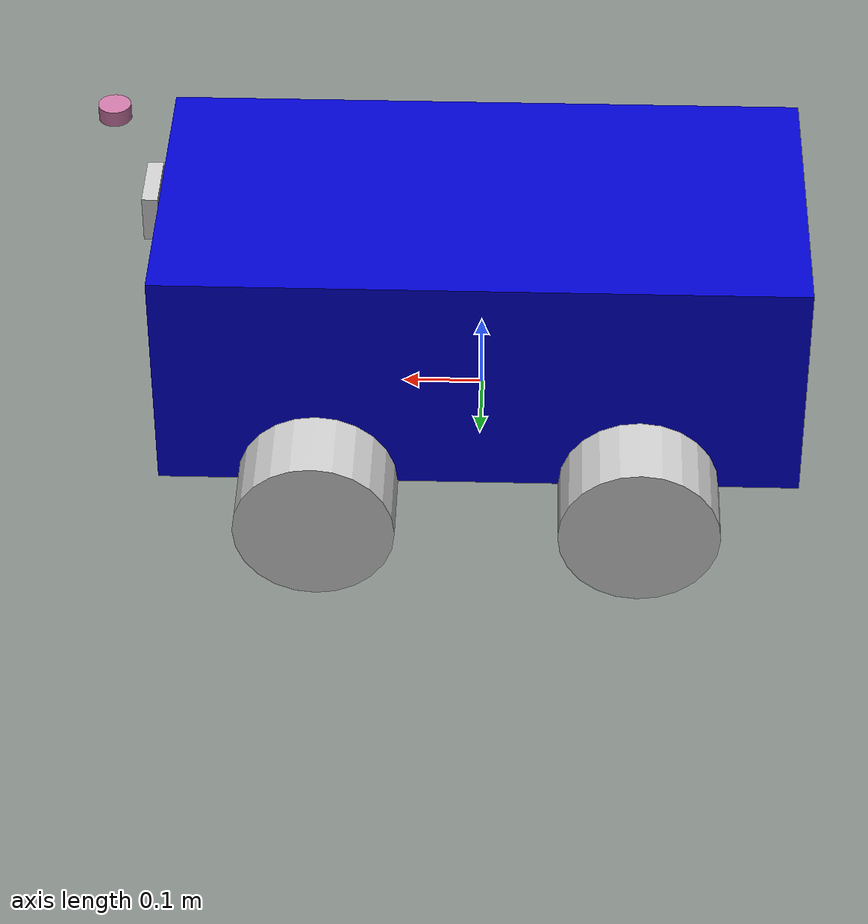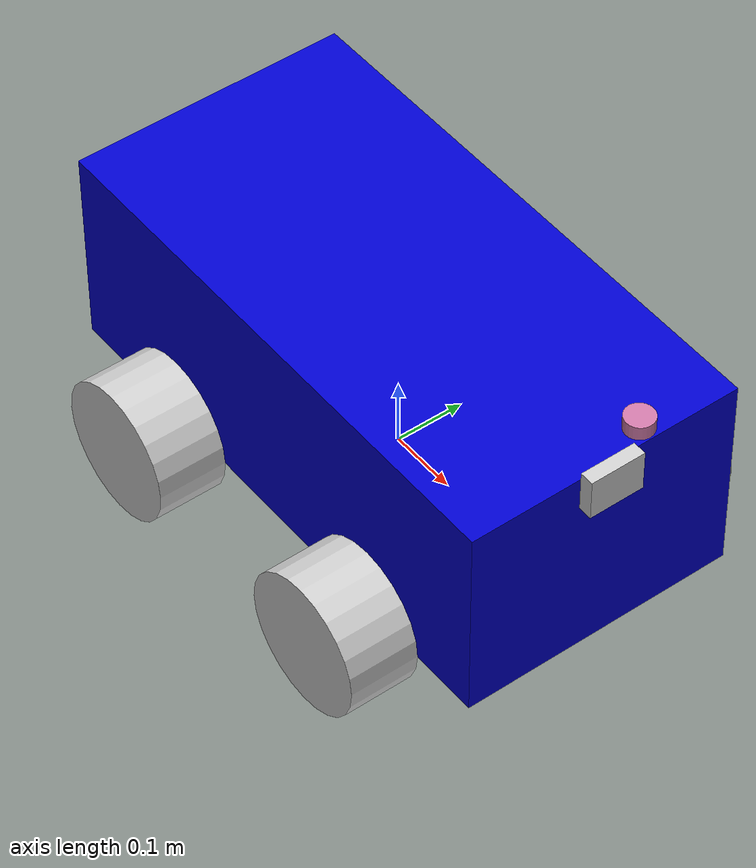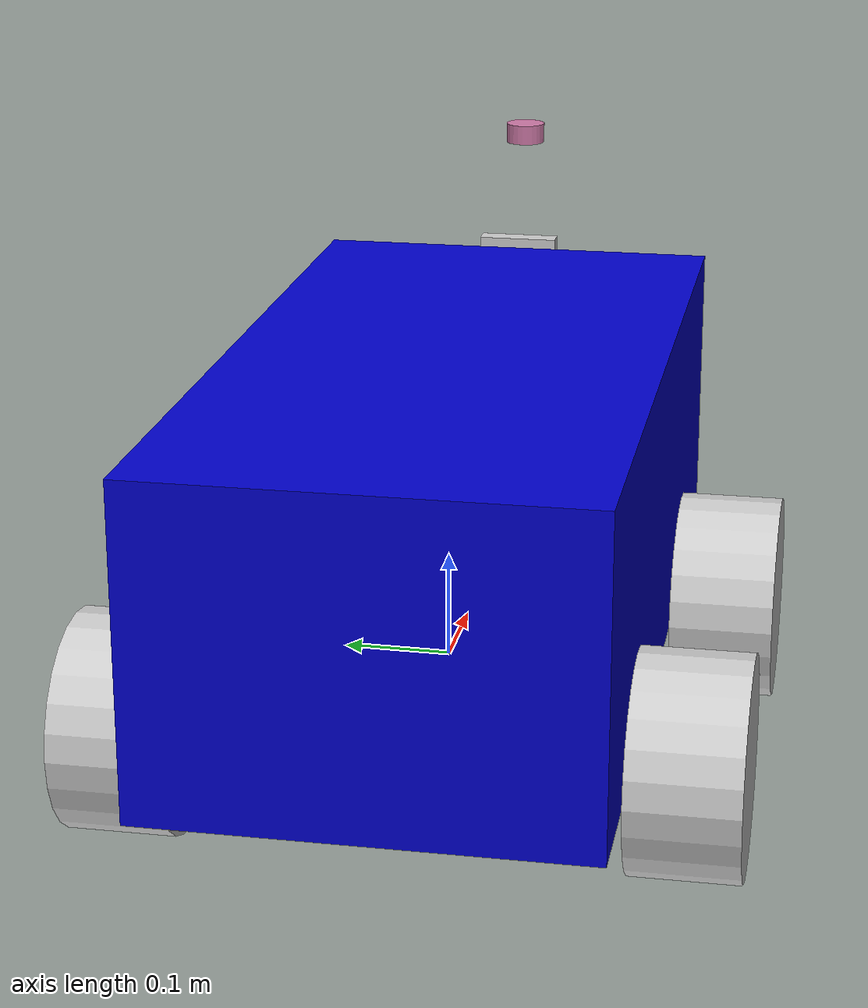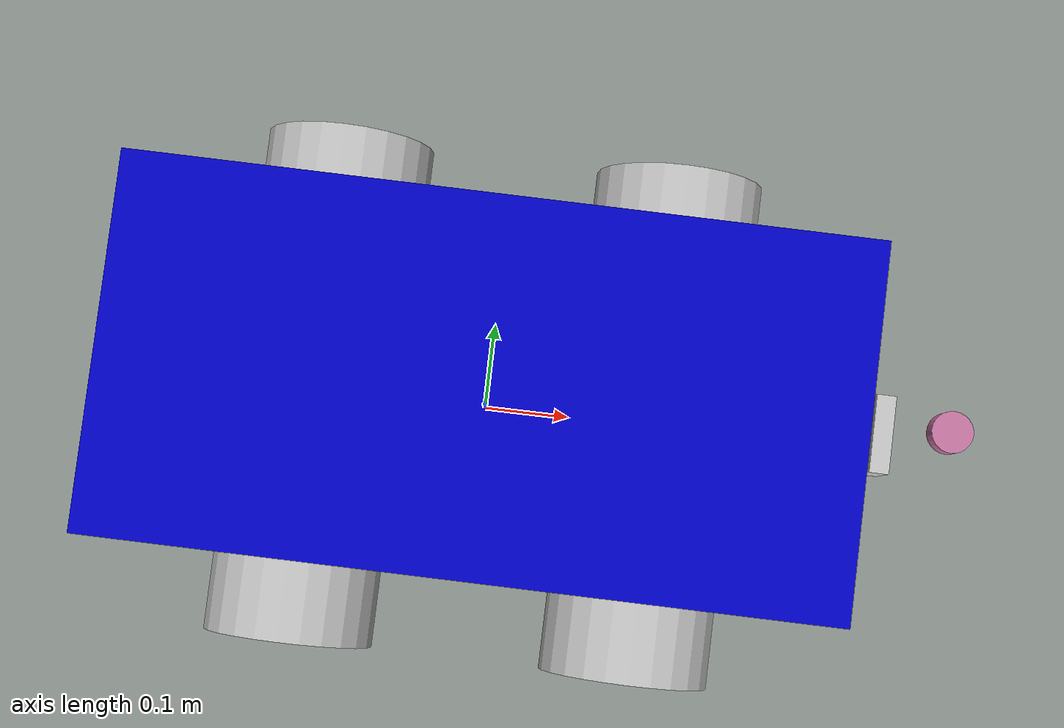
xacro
<?xml version="1.0"?>

<robot name="trolley" xmlns:xacro = "https://www.ros.org/wiki/xacro">

    <xacro:include filename="materials.xacro"/>

    <xacro:include filename="links_joints.xacro"/>

    <xacro:include filename="colors.xacro"/>

    <xacro:include filename="diff_drive_plugin.xacro"/>

    <xacro:include filename="camera.xacro"/>

    <xacro:include filename="3d_lidar.xacro"/>

</robot>

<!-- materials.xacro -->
<robot xmlns:xacro = "https://www.ros.org/wiki/xacro">

    <material name="red">
        <color rgba="0.8 0 0 1" />
    </material>

    <material name="grey">
        <color rgba="0.8 0.8 0.8 1" />
    </material>

    <material name="blue">
        <color rgba="0 0 0.8 1" />
    </material>

</robot>

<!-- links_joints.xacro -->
<robot  xmlns:xacro = "https://www.ros.org/wiki/xacro">

    <link name="body">
        <visual>
            <origin xyz="0 0 0.15" rpy="0 0 0" />
            <geometry>
                <box size="0.8 0.4 0.3" />
            </geometry>
            <material name="blue" />
        </visual>

        <collision>
            <origin xyz="0 0 0.15" rpy="0 0 0" />
            <geometry>
                <box size="0.8 0.4 0.3" />
            </geometry>
        </collision>

        <inertial>
            <origin xyz="0 0 0.15" rpy="0 0 0" />
            <mass value="10"/>
            <inertia ixx="0.608333333" ixy="0" ixz="0" iyy="0.666666667" iyz="0" izz="0.208333333"/>
        </inertial>

    </link>

    <xacro:macro name="wheel_link" params="prefix y f1 f2">
        <link name="${prefix}_wheel">
            <visual>
                <origin xyz="0 ${y} 0" rpy="1.57 0 0" />
                <geometry>
                    <cylinder radius="0.1" length="0.1" />
                </geometry>
                <material name="grey" />
            </visual>

            <collision>
                <origin xyz="0 ${y} 0" rpy="1.57 0 0" />
                <geometry>
                    <cylinder radius="0.1" length="0.1" />
                </geometry>

                <gazebo>
                    <mu1>${f1}</mu1>
                    <mu2>${f2}</mu2>
                </gazebo>

            </collision>

            <inertial>
                <origin xyz="0 ${y} 0" rpy="1.57 0 0" />
                <mass value="2"/>
                <inertia ixx="0.006666667" ixy="0" ixz="0" iyy="0.006666667" iyz="0" izz="0.01"/>
            </inertial>

        </link>
    </xacro:macro>

    <xacro:macro name="joint" params="wheel xyz">
        <joint name="${wheel}_joint" type="continuous">
            <origin xyz="${xyz}" rpy="0 0 0" />
            <parent link = "body" />
            <child link = "${wheel}_wheel" />
            <axis xyz="0 1 0" />
        </joint>
    </xacro:macro>

    <xacro:wheel_link prefix="front_right" y="-0.05" f1="0.1" f2="0.1"/>
    <xacro:joint wheel="front_right" xyz="0.2 -0.2 0"/>

    <xacro:wheel_link prefix="back_right" y="-0.05" f1="0.9" f2="0.9"/>
    <xacro:joint wheel="back_right" xyz="-0.2 -0.2 0"/>

    <xacro:wheel_link prefix="front_left" y="0.05" f1="0.1" f2="0.1"/>
    <xacro:joint wheel="front_left" xyz="0.2 0.2 0"/>

    <xacro:wheel_link prefix="back_left" y="0.05" f1="0.9" f2="0.9"/>
    <xacro:joint wheel="back_left" xyz="-0.2 0.2 0"/>

</robot>

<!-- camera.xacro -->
<robot xmlns:xacro = "https://www.ros.org/wiki/xacro">

    <link name="camera_link">
        <visual>
            <origin xyz="0.01 0 -0.02" rpy="0 0 0" />
            <geometry>
                <box size="0.02 0.08 0.06" />
            </geometry>
            <material name="grey" />
        </visual>

        <collision>
            <origin xyz="0.01 0 -0.02" rpy="0 0 0" />
            <geometry>
                <box size="0.02 0.08 0.06" />
            </geometry>
        </collision>

        <inertial>
            <origin xyz="0.01 0 -0.02" rpy="0 0 0" />
            <mass value="0.1"/>
            <inertia ixx="0.000056667" ixy="0" ixz="0" iyy="0.000033333" iyz="0" izz="0.000083333"/>
        </inertial>

    </link>

    <joint name="camera_to_body_joint" type="fixed">
        <parent link = "body" />
        <child link = "camera_link" />
        <origin xyz="0.40 0 0.3" rpy="0 0 0" />
    </joint>

    <gazebo reference="camera_link">
        <material>Gazebo/Red</material>
        <sensor name="camera_sensor" type="camera">
            <pose>0 0 0 0 0 0</pose>
            <visualize>true</visualize>
            <update_rate>10.0</update_rate>
            <plugin name="plugin_name" filename="libgazebo_ros_camera.so">
                <frame_name>camera_link</frame_name>
            </plugin>
        </sensor>
    </gazebo>

</robot>

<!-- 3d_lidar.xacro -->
<robot xmlns:xacro = "https://www.ros.org/wiki/xacro">

    <link name="3d_lidar_link">
        <visual>
            <origin xyz="0 0 0" rpy="0 0 0" />
            <geometry>
                <cylinder radius="0.02" length="0.02"/>
            </geometry>
        </visual>

        <collision>
            <origin xyz="0 0 0" rpy="0 0 0" />
            <geometry>
                <cylinder radius="0.01" length="0.01"/>
            </geometry>
        </collision>

        <inertial>
            <origin xyz="0 0 0" rpy="0 0 0" />
            <mass value="0.2"/>
            <inertia ixx="0.000455" ixy="0" ixz="0" iyy="0.000455" iyz="0" izz="0.00064"/>
        </inertial>

    </link>

    <joint name="3d_lidar_to_body_joint" type="fixed">
        <parent link = "body" />
        <child link = "3d_lidar_link" />
        <origin xyz="0.45 0 0.415" rpy="0 0 0" />    <!--have put x=0.45 instead of 0.41, just for debugging-->
    </joint>

    <gazebo reference="3d_lidar_link">
        <sensor name="lidar_3d" type="ray">
            <pose>0 0 0 0 0 0</pose>
            <visualize>true</visualize>
            <update_rate>20</update_rate>
            <ray>
                <scan>
                    <horizontal>
                        <samples>180</samples>
                        <min_angle>-1.57</min_angle>
                        <max_angle>1.57</max_angle>
                    </horizontal>

                    <vertical>
                        <samples>270</samples>
                        <min_angle>-1.57</min_angle>
                        <max_angle>3.14</max_angle>
                    </vertical>
                </scan>
                <range>
                    <min>0.116</min>
                    <max>10.0</max>
                    <resolution>0.01</resolution>
                </range>
            </ray>

            <plugin name="lidar_plugin_3d" filename="libgazebo_ros_ray_sensor.so">
            <ros>
                <argument>~/out:=/velodyne_points</argument>
            </ros>
            <frame_name>3d_lidar_link</frame_name>
            <output_type>sensor_msgs/PointCloud2</output_type>
            </plugin>
        </sensor>
    </gazebo>

</robot>
